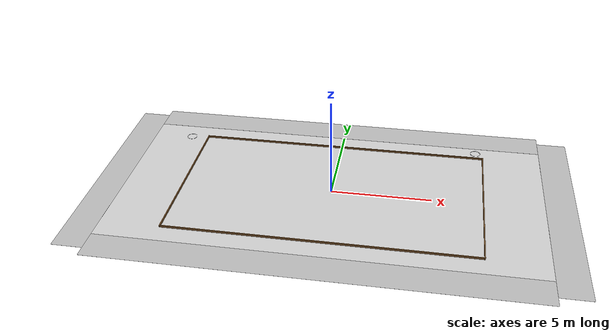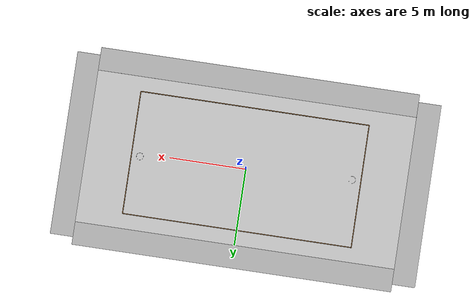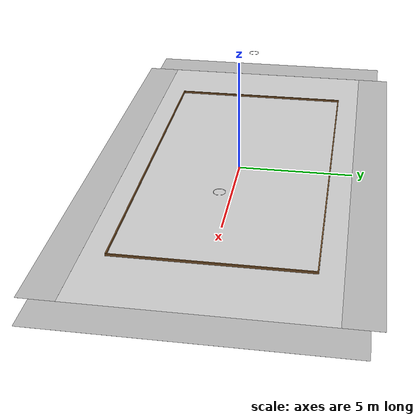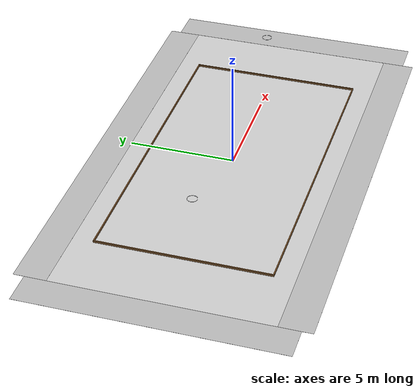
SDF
<sdf version="1.6">
 <world name="default_world">
  <include><uri>model://RoboCon25_Field</uri></include>
  <model name="mid360_simulation_return_plane">
   <static>true</static>
   <pose>0 0 4.0 0 0 0</pose>
   <link name="link">
    <collision name="collision"><geometry><box><size>24 18 0.05</size></box></geometry></collision>
   </link>
  </model>
  <scene><ambient>0.4 0.4 0.4 1</ambient><background>0.8 0.8 0.8 1</background><shadows>1</shadows></scene>
  <light name="sun" type="directional">
   <diffuse>0.8 0.8 0.8 1</diffuse>
   <specular>0.2 0.2 0.2 1</specular>
   <attenuation>
    <range>1000</range>
    <constant>0.9</constant>
    <linear>0.01</linear>
    <quadratic>0.001</quadratic>
   </attenuation>
   <direction>-0.5 0.1 -0.9</direction>
  </light>
 </world>
</sdf>

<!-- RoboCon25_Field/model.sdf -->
<sdf version="1.6">
  <model name="RoboCon25_Field">
    <static>true</static>

    <link name="chassis">
      <pose>0 0 0.01 0 0 0</pose>
      <collision name="collision">
        <geometry>
          <plane>
            <normal>0 0 1</normal>
            <size>22.5 11.5</size>
          </plane>
        </geometry>
        <surface>
          <friction>
            <ode>
              <mu>100</mu>
              <mu2>50</mu2>
            </ode>
          </friction>
          <bounce>
            <restitution_coefficient>0.75</restitution_coefficient>
            <threshold>0.1</threshold>
          </bounce>
        </surface>
      </collision>

      <visual name="carpet">
        <cast_shadows>false</cast_shadows>
        <geometry>
          <plane>
            <normal>0 0 1</normal>
            <size>22.7 11.7</size>
          </plane>
        </geometry>
        <material>
          <script>
            <uri>model://RoboCon25_Field/materials/scripts/robocon25_field.material</uri>
            <uri>model://RoboCon25_Field/materials/textures/carpet.jpg</uri>
            <name>RoboCon/Carpet</name>
          </script>
        </material>
      </visual>

      <!-- 添加围栏 -->
      <visual name="fence1">
        <pose>0 4.025 0.05 0 0 0</pose>
        <cast_shadows>false</cast_shadows>
        <geometry>
          <box>
            <size>15 0.05 0.1</size>
          </box>
        </geometry>
        <material>
          <ambient>0.4627 0.3137 0.1568 1.0</ambient>
          <diffuse>0.4627 0.3137 0.1568 1.0</diffuse>
          <specular>0.1 0.1 0.1 1.0</specular>
        </material>
      </visual>
      <collision name="collision_fence1">
        <pose>0 4.025 0.05 0 0 0</pose>
        <geometry>
          <box>
            <size>15 0.05 0.1</size>
          </box>
        </geometry>
      </collision>

      <visual name="fence2">
        <pose>0 -4.025 0.05 0 0 0</pose>
        <cast_shadows>false</cast_shadows>
        <geometry>
          <box>
            <size>15 0.05 0.1</size>
          </box>
        </geometry>
        <material>
          <ambient>0.4627 0.3137 0.1568 1.0</ambient>
          <diffuse>0.4627 0.3137 0.1568 1.0</diffuse>
          <specular>0.1 0.1 0.1 1.0</specular>
        </material>
      </visual>
      <collision name="collision_fence2">
        <pose>0 -4.025 0.05 0 0 0</pose>
        <geometry>
          <box>
            <size>15 0.05 0.1</size>
          </box>
        </geometry>
      </collision>

      <visual name="fence3">
        <pose>-7.525 0 0.05 0 0 0</pose>
        <cast_shadows>false</cast_shadows>
        <geometry>
          <box>
            <size>0.05 8.1 0.1</size>
          </box>
        </geometry>
        <material>
          <ambient>0.4627 0.3137 0.1568 1.0</ambient>
          <diffuse>0.4627 0.3137 0.1568 1.0</diffuse>
          <specular>0.1 0.1 0.1 1.0</specular>
        </material>
      </visual>
      <collision name="collision_fence3">
        <pose>-7.525 0 0.05 0 0 0</pose>
        <geometry>
          <box>
            <size>0.05 8.1 0.1</size>
          </box>
        </geometry>
      </collision>

      <visual name="fence4">
        <pose>7.525 0 0.05 0 0 0</pose>
        <cast_shadows>false</cast_shadows>
        <geometry>
          <box>
            <size>0.05 8.1 0.1</size>
          </box>
        </geometry>
        <material>
          <ambient>0.4627 0.3137 0.1568 1.0</ambient>
          <diffuse>0.4627 0.3137 0.1568 1.0</diffuse>
          <specular>0.1 0.1 0.1 1.0</specular>
        </material>
      </visual>
      <collision name="collision_fence4">
        <pose>7.525 0 0.05 0 0 0</pose>
        <geometry>
          <box>
            <size>0.05 8.1 0.1</size>
          </box>
        </geometry>
      </collision>

      <visual name="base1">
        <pose>0 5.75 0.01 0 0 0</pose>
        <cast_shadows>false</cast_shadows>
        <geometry>
          <plane>
            <normal>0 0 1</normal>
            <size>21.0 1.5</size>
          </plane>
        </geometry>
        <material>
          <script>
            <uri>model://RoboCon25_Field/materials/scripts/robocon25_field.material</uri>
            <uri>model://RoboCon25_Field/materials/textures/carpet.jpg</uri>
            <name>RoboCon/FieldBorder</name>
          </script>
        </material>
      </visual>
      <visual name="base2">
        <pose>0 -5.75 0.01 0 0 0</pose>
        <cast_shadows>false</cast_shadows>
        <geometry>
          <plane>
            <normal>0 0 1</normal>
            <size>21.0 1.5</size>
          </plane>
        </geometry>
        <material>
          <script>
            <uri>model://RoboCon25_Field/materials/scripts/robocon25_field.material</uri>
            <uri>model://RoboCon25_Field/materials/textures/carpet.jpg</uri>
            <name>RoboCon/FieldBorder</name>
          </script>
        </material>
      </visual>
      <visual name="base3">
        <pose>11.25 0 0.01 0 0 0</pose>
        <cast_shadows>false</cast_shadows>
        <geometry>
          <plane>
            <normal>0 0 1</normal>
            <size>1.5 12.0</size>
          </plane>
        </geometry>
        <material>
          <script>
            <uri>model://RoboCon25_Field/materials/scripts/robocon25_field.material</uri>
            <uri>model://RoboCon25_Field/materials/textures/carpet.jpg</uri>
            <name>RoboCon/FieldBorder</name>
          </script>
        </material>
      </visual>
      <visual name="base4">
        <pose>-11.25 0 0.01 0 0 0</pose>
        <cast_shadows>false</cast_shadows>
        <geometry>
          <plane>
            <normal>0 0 1</normal>
            <size>1.5 12.0</size>
          </plane>
        </geometry>
        <material>
          <script>
            <uri>model://RoboCon25_Field/materials/scripts/robocon25_field.material</uri>
            <uri>model://RoboCon25_Field/materials/textures/carpet.jpg</uri>
            <name>RoboCon/FieldBorder</name>
          </script>
        </material>
      </visual>
    </link>

    <model name="basketball_hoop1">
      <static>true</static> <!-- 设置模型为静止 -->
      <link name="link">
        <pose>6.2 -0.9 0 0 0 0</pose> <!-- 设置模型的初始位置和方向 -->
        <visual name="visual">
          <!-- Rulebook section 1 specifies a 2.43 m basket height; shift the upstream mesh by 0.60 m. -->
          <pose>0 0 -0.60 0 0 0</pose>
          <geometry>
            <mesh>
              <uri>model://hoop1/model.dae</uri> <!-- 相对于.sdf文件的路径 -->
            </mesh>
          </geometry>
        </visual>
        <!-- 自定义碰撞体 -->
        <collision name="collision_backboard">
          <pose>0.6 0.93 2.75 0 0 0</pose> <!-- Rulebook-aligned backboard collision center -->
          <geometry>
            <box>
              <size>0.02 1.8 1.05</size> <!-- 长宽高 -->
            </box>
          </geometry>
        </collision>
        <!-- 空心圆环碰撞体 -->
        <collision name="collision_hoop">
          <pose>0.24 0.71 2.43 0 0 0</pose> <!-- Rulebook section 1 basket height -->
          <geometry>
            <mesh>
              <uri>model://hoopC/model.dae</uri> <!-- 空心圆环模型路径 -->
              <scale>1.57 1.57 1.57</scale> <!-- 放大模型，根据需要调整比例 -->
            </mesh>
          </geometry>
        </collision>
      </link>
    </model>

    <model name="basketball_hoop2">
      <static>true</static> <!-- 设置模型为静止 -->
      <link name="link">
        <pose>-6.2 0.9 0 0 0 3.141592</pose> <!-- 设置模型的初始位置和方向 -->
        <visual name="visual">
          <!-- Rulebook section 1 specifies a 2.43 m basket height; shift the upstream mesh by 0.60 m. -->
          <pose>0 0 -0.60 0 0 0</pose>
          <geometry>
            <mesh>
              <uri>model://hoop2/model.dae</uri> <!-- 相对于.sdf文件的路径 -->
            </mesh>
          </geometry>
        </visual>
        <!-- 自定义碰撞体 -->
        <collision name="collision_backboard">
          <pose>0.6 0.93 2.75 0 0 0</pose> <!-- Rulebook-aligned backboard collision center -->
          <geometry>
            <box>
              <size>0.02 1.8 1.05</size> <!-- 长宽高 -->
            </box>
          </geometry>
        </collision>
        <!-- 空心圆环碰撞体 -->
        <collision name="collision_hoop">
          <pose>0.24 0.71 2.43 0 0 0</pose> <!-- Rulebook section 1 basket height -->
          <geometry>
            <mesh>
              <uri>model://hoopC/model.dae</uri> <!-- 空心圆环模型路径 -->
              <scale>1.57 1.57 1.57</scale> <!-- 放大模型，根据需要调整比例 -->
            </mesh>
          </geometry>
        </collision>
      </link>
    </model>
  </model>
</sdf>
